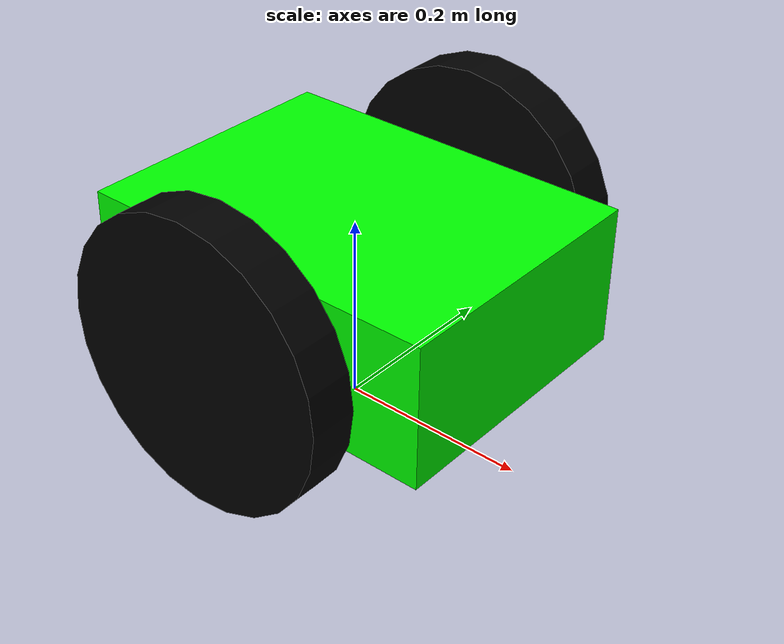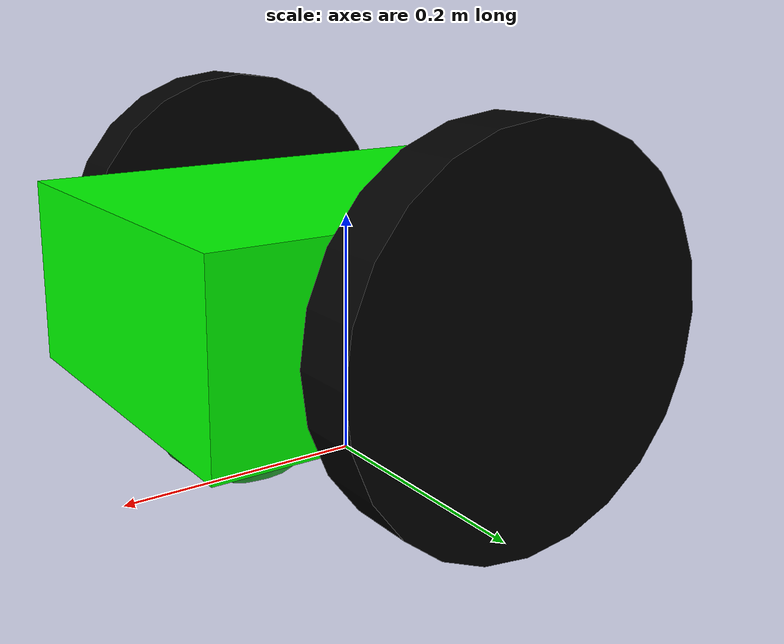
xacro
<robot name="my_robot" xmlns:xacro="http://www.ros.org/wiki/xacro">
<xacro:include filename="my_robot.gazebo" />
  <link name="robot_footprint"></link>

  <joint name="robot_footprint_joint" type="fixed">
    <origin xyz="0 0 0.15" rpy="0 0 0" />
    <parent link="robot_footprint"/>
    <child link="chassis" />
  </joint>

  <link name='chassis'>
    <pose>0 0 0.1 0 0 0</pose>

    <inertial>
      <mass value="30.0"/>
      <origin xyz="0.0 0 0" rpy=" 0 0 0"/>
      <inertia
          ixx="0.1" ixy="0" ixz="0"
          iyy="0.1" iyz="0"
          izz="0.1"
      />
    </inertial>

    <collision name='collision'>
      <origin xyz="0 0 0" rpy=" 0 0 0"/>
      <geometry>
        <box size=".4 .3 .15"/>
      </geometry>
      <material name="green">
        <color rgba="0.0 1.0 0.0 1.0"/>
      </material>
    </collision>

    <visual name='chassis_visual'>
      <origin xyz="0 0 0" rpy=" 0 0 0"/>
      <geometry>
        <box size=".4 .3 .15"/>
      </geometry>
       <material name="green">
        <color rgba="0.0 1.0 0.0 1.0"/>
      </material>
   </visual>

    <collision name='back_caster_collision'>
      <origin xyz="-0.1 0 -0.075" rpy=" 0 0 0"/>
      <geometry>
        <sphere radius="0.073"/>
      </geometry>
    </collision>

    <visual name='back_caster_visual'>
      <origin xyz="-0.1 0 -0.075" rpy=" 0 0 0"/>
      <geometry>
        <sphere radius="0.075"/>
      </geometry>
    </visual>

    <collision name='front_caster_collision'>
      <origin xyz="0.1 0 -0.075" rpy=" 0 0 0"/>
      <geometry>
        <sphere radius="0.073"/>
      </geometry>
    </collision>

    <visual name='front_caster_visual'>
      <origin xyz="0.1 0 -0.075" rpy=" 0 0 0"/>
      <geometry>
        <sphere radius="0.075"/>
      </geometry>
    </visual>

  </link>

  <gazebo reference="chassis">
    <material>Gazebo/Green</material>
  </gazebo>

  <joint type="continuous" name="mid_right_wheel_hinge">
    <origin xyz="0 -0.2 0" rpy="0 0 0"/>
    <parent link="chassis"/>
    <child link="mid_right_wheel"/>
    <axis xyz="0 1 0" rpy="0 0 0"/>
    <limit effort="10000" velocity="1000"/>
    <dynamics damping="1.0" friction="1.0"/>
  </joint>

  <link name='mid_right_wheel'>
    <pose>0 0 0.1 0 0 0</pose>

    <inertial>
      <mass value="10.0"/>
      <origin xyz="0 0 0" rpy=" 0 1.5707 1.5707"/>
      <inertia
          ixx="0.1" ixy="0" ixz="0"
          iyy="0.1" iyz="0"
          izz="0.1"
      />
    </inertial>

    <collision name='mid_right_wheel_collision'>
      <origin xyz="0 0 0" rpy=" 0 1.5707 1.5707"/>
      <geometry>
        <cylinder radius=".15" length=".05"/>
      </geometry>
      <material name="black">
        <color rgba="0.0 0.0 0.0 1.0"/>
      </material>
    </collision>

    <visual name='mid_right_wheel_visual'>
      <origin xyz="0 0 0" rpy=" 0 1.5707 1.5707"/>
       <geometry>
        <cylinder radius=".15" length=".05"/>
      </geometry>
      <material name="black">
        <color rgba="0.0 0.0 0.0 1.0"/>
      </material>
    </visual>

  </link>

  <gazebo reference="mid_right_wheel">
    <material>Gazebo/Black</material>
  </gazebo>

  <joint type="continuous" name="mid_left_wheel_hinge">
    <origin xyz="0 0.2 0" rpy="0 0 0"/>
    <parent link="chassis"/>
    <child link="mid_left_wheel"/>
    <axis xyz="0 1 0" rpy="0 0 0"/>
    <limit effort="10000" velocity="1000"/>
    <dynamics damping="1.0" friction="1.0"/>
  </joint>

  <link name='mid_left_wheel'>
    <pose>0 0 0.1 0 0 0</pose>

    <inertial>
      <mass value="10.0"/>
      <origin xyz="0 0 0" rpy=" 0 1.5707 1.5707"/>
      <inertia
          ixx="0.1" ixy="0" ixz="0"
          iyy="0.1" iyz="0"
          izz="0.1"
      />
    </inertial>

    <collision name='mid_left_wheel_collision'>
      <origin xyz="0 0 0" rpy=" 0 1.5707 1.5707"/>
      <geometry>
        <cylinder radius=".15" length=".05"/>
      </geometry>
      <material name="black">
        <color rgba="0.0 0.0 0.0 1.0"/>
      </material>
    </collision>

    <visual name='mid_left_wheel_visual'>
      <origin xyz="0 0 0" rpy=" 0 1.5707 1.5707"/>
      <geometry>
        <cylinder radius=".15" length=".05"/>
      </geometry>
      <material name="black">
        <color rgba="0.0 0.0 0.0 1.0"/>
      </material>
    </visual>

  </link>

  <gazebo reference="mid_left_wheel">
    <material>Gazebo/Black</material>
  </gazebo>

</robot>
